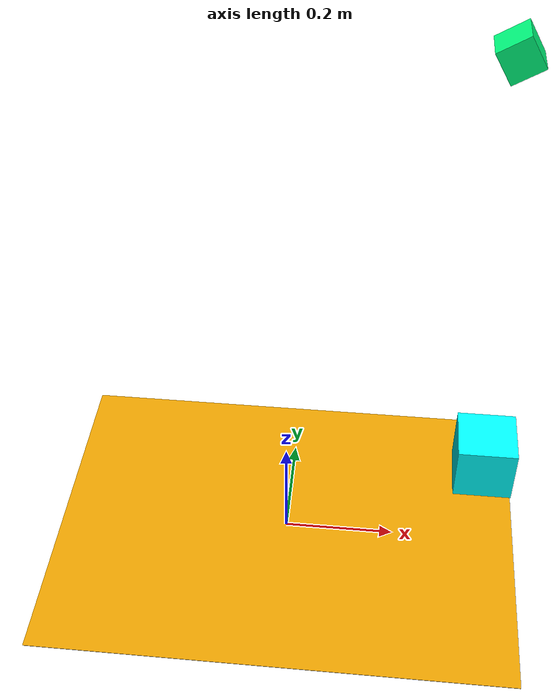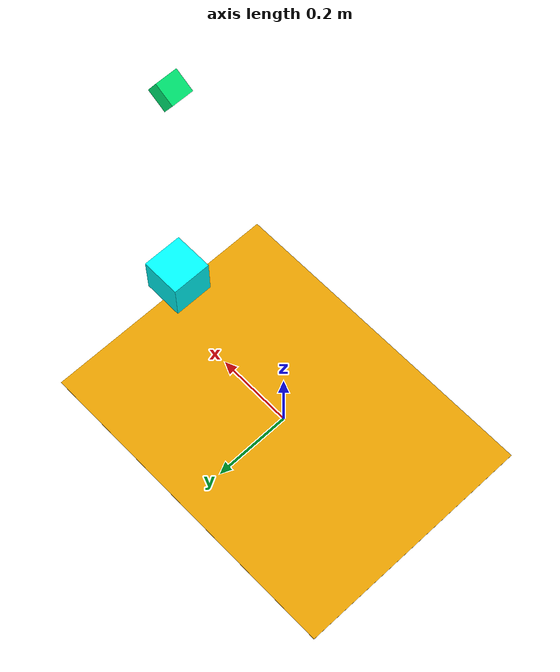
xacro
<?xml version="1.0"?>
<robot xmlns:xacro="http://ros.org/wiki/xacro"
		name="lxind">

    <!-- servo4: smaller robot -->

	<!-- const -->
	<xacro:property name="M_PI" value="3.1415926" />

	<!-- base -->
	<link name="base_footprint">
		<visual>
			<geometry>
				<box size="0.853 0.629 0.001" />
			</geometry>
		</visual>
	</link>

	<link name="base_link">
		<visual>
			<geometry>
				<box size="0.853 0.629 0.001" />
			</geometry>
			<material name="green">
				<color rgba="0 1 0 1" />
			</material>
		</visual>
	</link>

	<link name="laser_link">
		<visual>
			<geometry>
				<box size="0.1 0.1 0.1" />
			</geometry>
			<material name="gb">
				<color rgba="0 1 1 1" />
			</material>
		</visual>
	</link>

<!-- tof camera -->
	<link name="lxtof_link">
		<visual>
			<geometry>
				<box size="0.05 0.05 0.05" />
			</geometry>
			<material name="g05b">
				<color rgba="0 1 0.5 1" />
			</material>
		</visual>
	</link>

<!-- JOINTS -->
	<joint name="base_joint" type="fixed">
		<origin rpy="0 0 0" xyz="0 0 0" />
		<parent link="base_footprint" />
		<child link="base_link" />
	</joint>  <!-- AT TOP SURF===> NOW: FLOOR same -->

	<joint name="base_laser_joint" type="fixed">
		<origin rpy="0 0 0" xyz="0.346 0 0.228" />   <!-- xy offset from centre of driving wheel -->
		<parent link="base_link" />
		<child link="laser_link" />
	</joint>

	<joint name="base_lxtof_joint" type="fixed">
		<origin rpy="${M_PI} ${-M_PI*0.17} 0" xyz="0.3 0.0 0.97" /> <!-- around red/green/blue axis -->
            <!--  around y axis(minus ->toward ground), x(ros axis), z  ${M_PI/4} -->
		<parent link="base_link" />
		<child link="lxtof_link" />
	</joint>

</robot>
